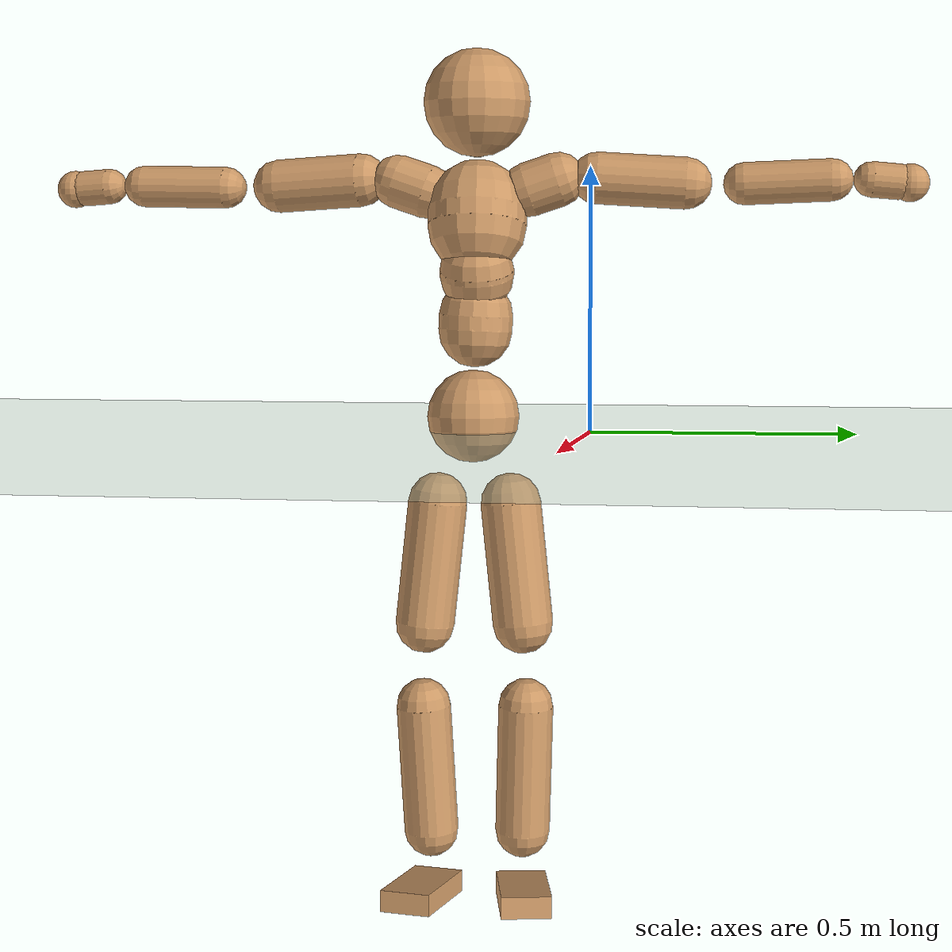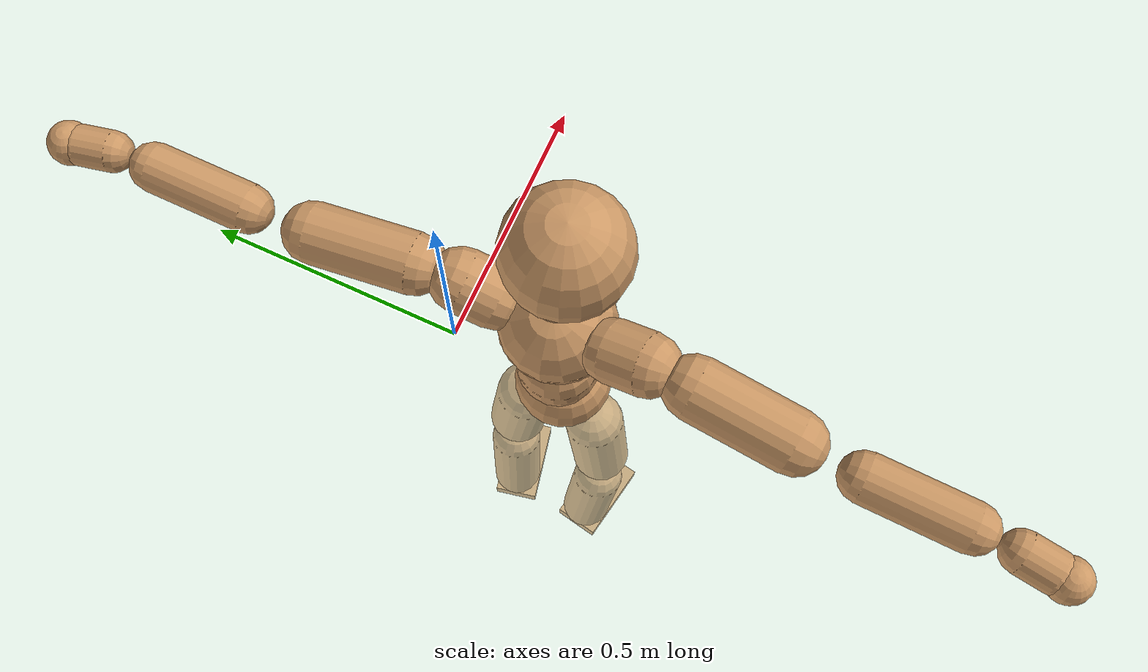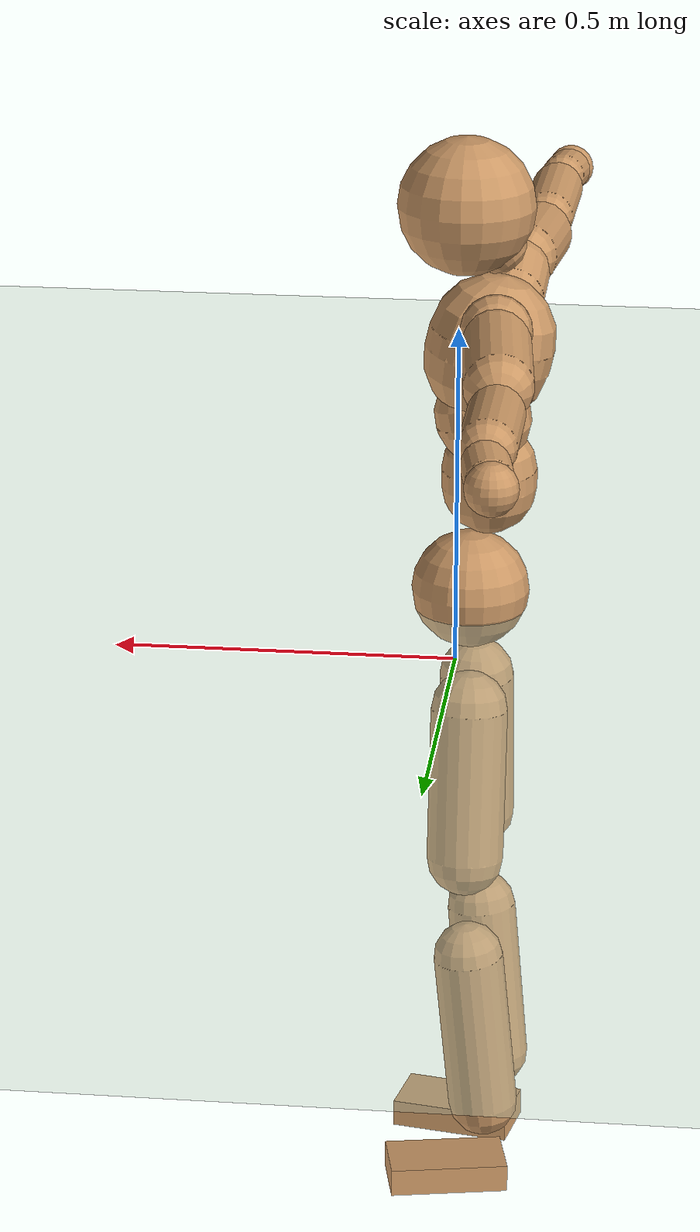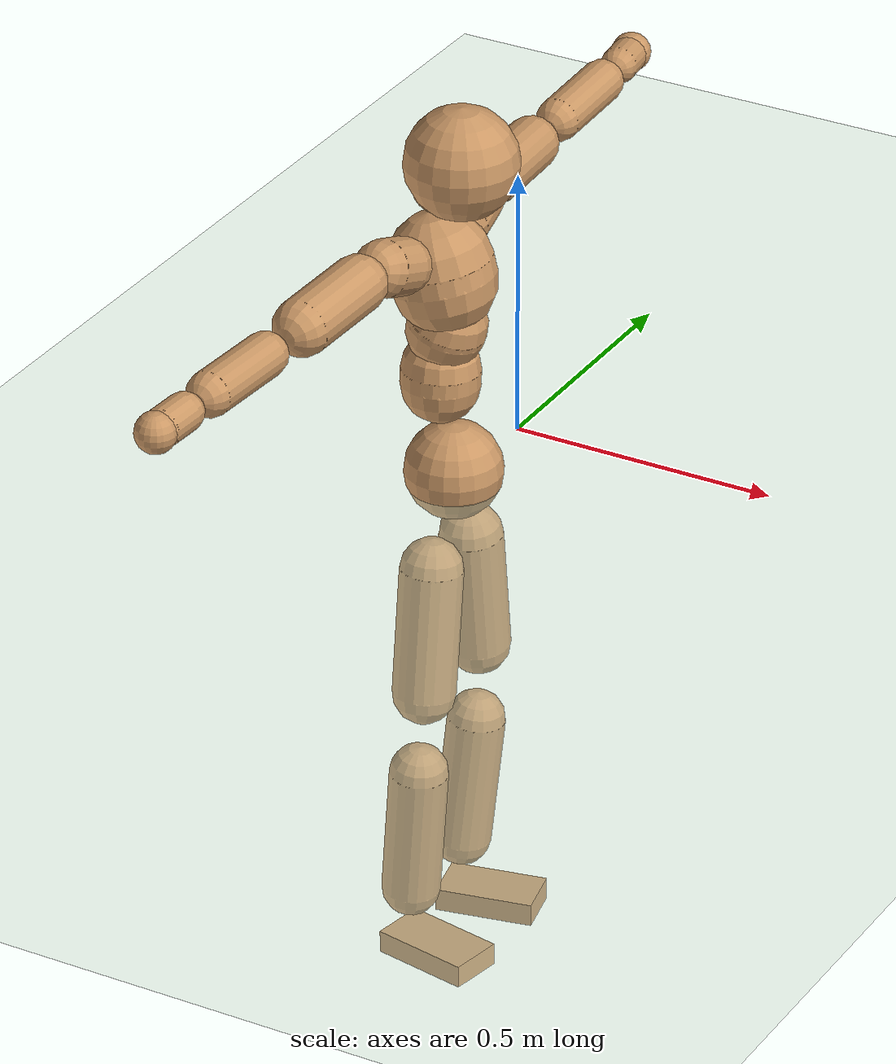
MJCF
<mujoco model="humanoid">
  <compiler coordinate="local"/>
  <default>
    <joint damping="0.0" armature="0.01" stiffness="0.0" limited="true"/>
    <geom conaffinity="1" condim="3" contype="7" margin="0.001" rgba="0.8 0.6 .4 1"/>
  </default>
  <asset>
    <texture type="skybox" builtin="gradient" rgb1=".4 .5 .6" rgb2="0 0 0" width="100" height="100"/>
    <texture builtin="flat" height="1278" mark="cross" markrgb="1 1 1" name="texgeom" random="0.01" rgb1="0.8 0.6 0.4" rgb2="0.8 0.6 0.4" type="cube" width="127"/>
    <texture builtin="checker" height="100" name="texplane" rgb1="0 0 0" rgb2="0.8 0.8 0.8" type="2d" width="100"/>
    <material name="MatPlane" reflectance="0.5" shininess="1" specular="1" texrepeat="60 60" texture="texplane"/>
    <material name="geom" texture="texgeom" texuniform="true"/>
  </asset>
  <worldbody>
    <light cutoff="100" diffuse="1 1 1" dir="-0 0 -1.3" directional="true" exponent="1" pos="0 0 1.3" specular=".1 .1 .1"/>
    <geom conaffinity="1" condim="3" name="floor" pos="0 0 0" rgba="0.8 0.9 0.8 1" size="100 100 .2" type="plane" material="MatPlane"/>
    <body name="Pelvis" pos="-0.0022 -0.2248 0.0277">
      <freejoint name="Pelvis"/>
      <geom type="sphere" contype="1" conaffinity="1" density="500" size="0.0890" pos="0.0000 0.0000 0.0000" name="Pelvis"/>
      <body name="L_Hip" pos="-0.0069 0.0639 -0.0891">
        <joint name="L_Hip_x" type="hinge" pos="0 0 0" axis="1 0 0" stiffness="800" damping="80" armature="0.02" range="-180.0000 180.0000"/>
        <joint name="L_Hip_y" type="hinge" pos="0 0 0" axis="0 1 0" stiffness="800" damping="80" armature="0.02" range="-180.0000 180.0000"/>
        <joint name="L_Hip_z" type="hinge" pos="0 0 0" axis="0 0 1" stiffness="800" damping="80" armature="0.02" range="-180.0000 180.0000"/>
        <geom type="capsule" contype="1" conaffinity="1" density="500" fromto="0.0006 0.0081 -0.0780 0.0024 0.0324 -0.3120" size="0.058" name="L_Hip"/>
        <body name="L_Knee" pos="0.003 0.0405 -0.39">
          <joint name="L_Knee_x" type="hinge" pos="0 0 0" axis="1 0 0" stiffness="800" damping="80" armature="0.02" range="-180.0000 180.0000"/>
          <joint name="L_Knee_y" type="hinge" pos="0 0 0" axis="0 1 0" stiffness="800" damping="80" armature="0.02" range="-180.0000 180.0000"/>
          <joint name="L_Knee_z" type="hinge" pos="0 0 0" axis="0 0 1" stiffness="800" damping="80" armature="0.02" range="-180.0000 180.0000"/>
          <geom type="capsule" contype="1" conaffinity="1" density="500" fromto="-0.0082 -0.0032 -0.0845 -0.0328 -0.0128 -0.3379" size="0.053" name="L_Knee"/>
          <body name="L_Ankle" pos="-0.041 -0.016 -0.4224">
            <joint name="L_Ankle_x" type="hinge" pos="0 0 0" axis="1 0 0" stiffness="800" damping="80" armature="0.02" range="-180.0000 180.0000"/>
            <joint name="L_Ankle_y" type="hinge" pos="0 0 0" axis="0 1 0" stiffness="800" damping="80" armature="0.02" range="-180.0000 180.0000"/>
            <joint name="L_Ankle_z" type="hinge" pos="0 0 0" axis="0 0 1" stiffness="800" damping="80" armature="0.02" range="-180.0000 180.0000"/>
            <geom type="box" contype="1" conaffinity="1" density="500" pos="0.0636 0.0132 -0.0294" size="0.0905 0.0486 0.0214" quat="0.9948 0.0000 0.0000 0.1022" name="L_Ankle"/>
            <body name="L_Toe" pos="0.1273 0.0264 -0.0587">
              <joint name="L_Toe_x" type="hinge" pos="0 0 0" axis="1 0 0" stiffness="500" damping="50" armature="0.02" range="-180.0000 180.0000"/>
              <joint name="L_Toe_y" type="hinge" pos="0 0 0" axis="0 1 0" stiffness="500" damping="50" armature="0.02" range="-180.0000 180.0000"/>
              <joint name="L_Toe_z" type="hinge" pos="0 0 0" axis="0 0 1" stiffness="500" damping="50" armature="0.02" range="-180.0000 180.0000"/>
              <geom type="box" contype="1" conaffinity="1" density="500" pos="0.0000 0.0000 0.0291" size="0.001 0.0024 0.0011" quat="0.9941 0.0000 0.0000 0.1081" name="L_Toe"/>
            </body>
          </body>
        </body>
      </body>
      <body name="R_Hip" pos="-0.0048 -0.062 -0.0874">
        <joint name="R_Hip_x" type="hinge" pos="0 0 0" axis="1 0 0" stiffness="800" damping="80" armature="0.02" range="-180.0000 180.0000"/>
        <joint name="R_Hip_y" type="hinge" pos="0 0 0" axis="0 1 0" stiffness="800" damping="80" armature="0.02" range="-180.0000 180.0000"/>
        <joint name="R_Hip_z" type="hinge" pos="0 0 0" axis="0 0 1" stiffness="800" damping="80" armature="0.02" range="-180.0000 180.0000"/>
        <geom type="capsule" contype="1" conaffinity="1" density="500" fromto="-0.0005 -0.0086 -0.0797 -0.0021 -0.0345 -0.3189" size="0.057" name="R_Hip"/>
        <body name="R_Knee" pos="-0.0027 -0.0431 -0.3986">
          <joint name="R_Knee_x" type="hinge" pos="0 0 0" axis="1 0 0" stiffness="800" damping="80" armature="0.02" range="-180.0000 180.0000"/>
          <joint name="R_Knee_y" type="hinge" pos="0 0 0" axis="0 1 0" stiffness="800" damping="80" armature="0.02" range="-180.0000 180.0000"/>
          <joint name="R_Knee_z" type="hinge" pos="0 0 0" axis="0 0 1" stiffness="800" damping="80" armature="0.02" range="-180.0000 180.0000"/>
          <geom type="capsule" contype="1" conaffinity="1" density="500" fromto="-0.0080 0.0036 -0.0844 -0.0318 0.0143 -0.3376" size="0.0532" name="R_Knee"/>
          <body name="R_Ankle" pos="-0.0398 0.0179 -0.422">
            <joint name="R_Ankle_x" type="hinge" pos="0 0 0" axis="1 0 0" stiffness="800" damping="80" armature="0.02" range="-180.0000 180.0000"/>
            <joint name="R_Ankle_y" type="hinge" pos="0 0 0" axis="0 1 0" stiffness="800" damping="80" armature="0.02" range="-180.0000 180.0000"/>
            <joint name="R_Ankle_z" type="hinge" pos="0 0 0" axis="0 0 1" stiffness="800" damping="80" armature="0.02" range="-180.0000 180.0000"/>
            <geom type="box" contype="1" conaffinity="1" density="500" pos="0.0658 -0.0123 -0.0248" size="0.0923 0.0498 0.0212" quat="0.9957 0.0000 0.0000 -0.0921" name="R_Ankle"/>
            <body name="R_Toe" pos="0.1316 -0.0246 -0.0496">
              <joint name="R_Toe_x" type="hinge" pos="0 0 0" axis="1 0 0" stiffness="500" damping="50" armature="0.02" range="-180.0000 180.0000"/>
              <joint name="R_Toe_y" type="hinge" pos="0 0 0" axis="0 1 0" stiffness="500" damping="50" armature="0.02" range="-180.0000 180.0000"/>
              <joint name="R_Toe_z" type="hinge" pos="0 0 0" axis="0 0 1" stiffness="500" damping="50" armature="0.02" range="-180.0000 180.0000"/>
              <geom type="box" contype="1" conaffinity="1" density="500" pos="0.0000 0.0000 0.0254" size="0.001 0.0025 0.0011" quat="0.9965 0.0000 0.0000 -0.0835" name="R_Toe"/>
            </body>
          </body>
        </body>
      </body>
      <body name="Torso" pos="-0.0264 -0.0029 0.1084">
        <joint name="Torso_x" type="hinge" pos="0 0 0" axis="1 0 0" stiffness="1000" damping="100" armature="0.02" range="-180.0000 180.0000"/>
        <joint name="Torso_y" type="hinge" pos="0 0 0" axis="0 1 0" stiffness="1000" damping="100" armature="0.02" range="-180.0000 180.0000"/>
        <joint name="Torso_z" type="hinge" pos="0 0 0" axis="0 0 1" stiffness="1000" damping="100" armature="0.02" range="-180.0000 180.0000"/>
        <geom type="capsule" contype="1" conaffinity="1" density="500" fromto="0.0007 0.0039 0.0831 0.0005 0.0026 0.0554" size="0.0714" name="Torso"/>
        <body name="Spine" pos="0.0012 0.0065 0.1385">
          <joint name="Spine_x" type="hinge" pos="0 0 0" axis="1 0 0" stiffness="1000" damping="100" armature="0.02" range="-180.0000 180.0000"/>
          <joint name="Spine_y" type="hinge" pos="0 0 0" axis="0 1 0" stiffness="1000" damping="100" armature="0.02" range="-180.0000 180.0000"/>
          <joint name="Spine_z" type="hinge" pos="0 0 0" axis="0 0 1" stiffness="1000" damping="100" armature="0.02" range="-180.0000 180.0000"/>
          <geom type="capsule" contype="1" conaffinity="1" density="500" fromto="0.0115 0.0009 0.0323 0.0077 0.0006 0.0216" size="0.0712" name="Spine"/>
          <body name="Chest" pos="0.0191 0.0014 0.0539">
            <joint name="Chest_x" type="hinge" pos="0 0 0" axis="1 0 0" stiffness="1000" damping="100" armature="0.02" range="-180.0000 180.0000"/>
            <joint name="Chest_y" type="hinge" pos="0 0 0" axis="0 1 0" stiffness="1000" damping="100" armature="0.02" range="-180.0000 180.0000"/>
            <joint name="Chest_z" type="hinge" pos="0 0 0" axis="0 0 1" stiffness="1000" damping="100" armature="0.02" range="-180.0000 180.0000"/>
            <geom type="capsule" contype="1" conaffinity="1" density="500" fromto="-0.0217 -0.0015 0.0937 -0.0145 -0.0010 0.0624" size="0.095" name="Chest"/>
            <body name="Neck" pos="-0.0364 -0.0036 0.2222">
              <joint name="Neck_x" type="hinge" pos="0 0 0" axis="1 0 0" stiffness="500" damping="50" armature="0.02" range="-180.0000 180.0000"/>
              <joint name="Neck_y" type="hinge" pos="0 0 0" axis="0 1 0" stiffness="500" damping="50" armature="0.02" range="-180.0000 180.0000"/>
              <joint name="Neck_z" type="hinge" pos="0 0 0" axis="0 0 1" stiffness="500" damping="50" armature="0.02" range="-180.0000 180.0000"/>
              <geom type="capsule" contype="1" conaffinity="1" density="500" fromto="0.0108 0.0016 0.0141 0.0433 0.0064 0.0562" size="0.0443" name="Neck"/>
              <body name="Head" pos="0.0541 0.008 0.0703">
                <joint name="Head_x" type="hinge" pos="0 0 0" axis="1 0 0" stiffness="500" damping="50" armature="0.02" range="-180.0000 180.0000"/>
                <joint name="Head_y" type="hinge" pos="0 0 0" axis="0 1 0" stiffness="500" damping="50" armature="0.02" range="-180.0000 180.0000"/>
                <joint name="Head_z" type="hinge" pos="0 0 0" axis="0 0 1" stiffness="500" damping="50" armature="0.02" range="-180.0000 180.0000"/>
                <geom type="sphere" contype="1" conaffinity="1" density="500" size="0.1019" pos="0.0000 0.0000 0.0000" name="Head"/>
              </body>
            </body>
            <body name="L_Thorax" pos="-0.0341 0.0767 0.1248">
              <joint name="L_Thorax_x" type="hinge" pos="0 0 0" axis="1 0 0" stiffness="500" damping="50" armature="0.02" range="-180.0000 180.0000"/>
              <joint name="L_Thorax_y" type="hinge" pos="0 0 0" axis="0 1 0" stiffness="500" damping="50" armature="0.02" range="-180.0000 180.0000"/>
              <joint name="L_Thorax_z" type="hinge" pos="0 0 0" axis="0 0 1" stiffness="500" damping="50" armature="0.02" range="-180.0000 180.0000"/>
              <geom type="capsule" contype="1" conaffinity="1" density="500" fromto="-0.0011 0.0187 0.0063 -0.0045 0.0748 0.0252" size="0.0523" name="L_Thorax"/>
              <body name="L_Shoulder" pos="-0.0056 0.0935 0.0315">
                <joint name="L_Shoulder_x" type="hinge" pos="0 0 0" axis="1 0 0" stiffness="500" damping="50" armature="0.02" range="-720.0000 720.0000"/>
                <joint name="L_Shoulder_y" type="hinge" pos="0 0 0" axis="0 1 0" stiffness="500" damping="50" armature="0.02" range="-720.0000 720.0000"/>
                <joint name="L_Shoulder_z" type="hinge" pos="0 0 0" axis="0 0 1" stiffness="500" damping="50" armature="0.02" range="-720.0000 720.0000"/>
                <geom type="capsule" contype="1" conaffinity="1" density="500" fromto="-0.0054 0.0559 -0.0035 -0.0217 0.2234 -0.0139" size="0.0499" name="L_Shoulder"/>
                <body name="L_Elbow" pos="-0.0271 0.2793 -0.0173">
                  <joint name="L_Elbow_x" type="hinge" pos="0 0 0" axis="1 0 0" stiffness="500" damping="50" armature="0.02" range="-720.0000 720.0000"/>
                  <joint name="L_Elbow_y" type="hinge" pos="0 0 0" axis="0 1 0" stiffness="500" damping="50" armature="0.02" range="-720.0000 720.0000"/>
                  <joint name="L_Elbow_z" type="hinge" pos="0 0 0" axis="0 0 1" stiffness="500" damping="50" armature="0.02" range="-720.0000 720.0000"/>
                  <geom type="capsule" contype="1" conaffinity="1" density="500" fromto="-0.0004 0.0547 0.0020 -0.0016 0.2186 0.0081" size="0.0402" name="L_Elbow"/>
                  <body name="L_Wrist" pos="-0.002 0.2733 0.0102">
                    <joint name="L_Wrist_x" type="hinge" pos="0 0 0" axis="1 0 0" stiffness="300" damping="30" armature="0.02" range="-180.0000 180.0000"/>
                    <joint name="L_Wrist_y" type="hinge" pos="0 0 0" axis="0 1 0" stiffness="300" damping="30" armature="0.02" range="-180.0000 180.0000"/>
                    <joint name="L_Wrist_z" type="hinge" pos="0 0 0" axis="0 0 1" stiffness="300" damping="30" armature="0.02" range="-180.0000 180.0000"/>
                    <geom type="capsule" contype="1" conaffinity="1" density="500" fromto="-0.0034 0.0182 -0.0016 -0.0135 0.0726 -0.0064" size="0.0337" name="L_Wrist"/>
                    <body name="L_Hand" pos="-0.0168 0.0908 -0.008">
                      <joint name="L_Hand_x" type="hinge" pos="0 0 0" axis="1 0 0" stiffness="300" damping="30" armature="0.02" range="-180.0000 180.0000"/>
                      <joint name="L_Hand_y" type="hinge" pos="0 0 0" axis="0 1 0" stiffness="300" damping="30" armature="0.02" range="-180.0000 180.0000"/>
                      <joint name="L_Hand_z" type="hinge" pos="0 0 0" axis="0 0 1" stiffness="300" damping="30" armature="0.02" range="-180.0000 180.0000"/>
                      <geom type="sphere" contype="1" conaffinity="1" density="500" size="0.0360" pos="0.0000 0.0000 0.0000" name="L_Hand"/>
                    </body>
                  </body>
                </body>
              </body>
            </body>
            <body name="R_Thorax" pos="-0.0382 -0.0806 0.1212">
              <joint name="R_Thorax_x" type="hinge" pos="0 0 0" axis="1 0 0" stiffness="500" damping="50" armature="0.02" range="-180.0000 180.0000"/>
              <joint name="R_Thorax_y" type="hinge" pos="0 0 0" axis="0 1 0" stiffness="500" damping="50" armature="0.02" range="-180.0000 180.0000"/>
              <joint name="R_Thorax_z" type="hinge" pos="0 0 0" axis="0 0 1" stiffness="500" damping="50" armature="0.02" range="-180.0000 180.0000"/>
              <geom type="capsule" contype="1" conaffinity="1" density="500" fromto="-0.0012 -0.0199 0.0068 -0.0049 -0.0795 0.0272" size="0.0514" name="R_Thorax"/>
              <body name="R_Shoulder" pos="-0.0062 -0.0994 0.0339">
                <joint name="R_Shoulder_x" type="hinge" pos="0 0 0" axis="1 0 0" stiffness="500" damping="50" armature="0.02" range="-720.0000 720.0000"/>
                <joint name="R_Shoulder_y" type="hinge" pos="0 0 0" axis="0 1 0" stiffness="500" damping="50" armature="0.02" range="-720.0000 720.0000"/>
                <joint name="R_Shoulder_z" type="hinge" pos="0 0 0" axis="0 0 1" stiffness="500" damping="50" armature="0.02" range="-720.0000 720.0000"/>
                <geom type="capsule" contype="1" conaffinity="1" density="500" fromto="-0.0041 -0.0550 -0.0033 -0.0165 -0.2199 -0.0132" size="0.0517" name="R_Shoulder"/>
                <body name="R_Elbow" pos="-0.0206 -0.2749 -0.0166">
                  <joint name="R_Elbow_x" type="hinge" pos="0 0 0" axis="1 0 0" stiffness="500" damping="50" armature="0.02" range="-720.0000 720.0000"/>
                  <joint name="R_Elbow_y" type="hinge" pos="0 0 0" axis="0 1 0" stiffness="500" damping="50" armature="0.02" range="-720.0000 720.0000"/>
                  <joint name="R_Elbow_z" type="hinge" pos="0 0 0" axis="0 0 1" stiffness="500" damping="50" armature="0.02" range="-720.0000 720.0000"/>
                  <geom type="capsule" contype="1" conaffinity="1" density="500" fromto="-0.0017 -0.0558 0.0013 -0.0069 -0.2230 0.0053" size="0.0406" name="R_Elbow"/>
                  <body name="R_Wrist" pos="-0.0086 -0.2788 0.0066">
                    <joint name="R_Wrist_x" type="hinge" pos="0 0 0" axis="1 0 0" stiffness="300" damping="30" armature="0.02" range="-180.0000 180.0000"/>
                    <joint name="R_Wrist_y" type="hinge" pos="0 0 0" axis="0 1 0" stiffness="300" damping="30" armature="0.02" range="-180.0000 180.0000"/>
                    <joint name="R_Wrist_z" type="hinge" pos="0 0 0" axis="0 0 1" stiffness="300" damping="30" armature="0.02" range="-180.0000 180.0000"/>
                    <geom type="capsule" contype="1" conaffinity="1" density="500" fromto="-0.0022 -0.0184 -0.0012 -0.0087 -0.0736 -0.0048" size="0.0348" name="R_Wrist"/>
                    <body name="R_Hand" pos="-0.0109 -0.092 -0.006">
                      <joint name="R_Hand_x" type="hinge" pos="0 0 0" axis="1 0 0" stiffness="300" damping="30" armature="0.02" range="-180.0000 180.0000"/>
                      <joint name="R_Hand_y" type="hinge" pos="0 0 0" axis="0 1 0" stiffness="300" damping="30" armature="0.02" range="-180.0000 180.0000"/>
                      <joint name="R_Hand_z" type="hinge" pos="0 0 0" axis="0 0 1" stiffness="300" damping="30" armature="0.02" range="-180.0000 180.0000"/>
                      <geom type="sphere" contype="1" conaffinity="1" density="500" size="0.0366" pos="0.0000 0.0000 0.0000" name="R_Hand"/>
                    </body>
                  </body>
                </body>
              </body>
            </body>
          </body>
        </body>
      </body>
    </body>
  </worldbody>
  <actuator>
    <motor name="L_Hip_x" joint="L_Hip_x" gear="500"/>
    <motor name="L_Hip_y" joint="L_Hip_y" gear="500"/>
    <motor name="L_Hip_z" joint="L_Hip_z" gear="500"/>
    <motor name="L_Knee_x" joint="L_Knee_x" gear="500"/>
    <motor name="L_Knee_y" joint="L_Knee_y" gear="500"/>
    <motor name="L_Knee_z" joint="L_Knee_z" gear="500"/>
    <motor name="L_Ankle_x" joint="L_Ankle_x" gear="500"/>
    <motor name="L_Ankle_y" joint="L_Ankle_y" gear="500"/>
    <motor name="L_Ankle_z" joint="L_Ankle_z" gear="500"/>
    <motor name="L_Toe_x" joint="L_Toe_x" gear="500"/>
    <motor name="L_Toe_y" joint="L_Toe_y" gear="500"/>
    <motor name="L_Toe_z" joint="L_Toe_z" gear="500"/>
    <motor name="R_Hip_x" joint="R_Hip_x" gear="500"/>
    <motor name="R_Hip_y" joint="R_Hip_y" gear="500"/>
    <motor name="R_Hip_z" joint="R_Hip_z" gear="500"/>
    <motor name="R_Knee_x" joint="R_Knee_x" gear="500"/>
    <motor name="R_Knee_y" joint="R_Knee_y" gear="500"/>
    <motor name="R_Knee_z" joint="R_Knee_z" gear="500"/>
    <motor name="R_Ankle_x" joint="R_Ankle_x" gear="500"/>
    <motor name="R_Ankle_y" joint="R_Ankle_y" gear="500"/>
    <motor name="R_Ankle_z" joint="R_Ankle_z" gear="500"/>
    <motor name="R_Toe_x" joint="R_Toe_x" gear="500"/>
    <motor name="R_Toe_y" joint="R_Toe_y" gear="500"/>
    <motor name="R_Toe_z" joint="R_Toe_z" gear="500"/>
    <motor name="Torso_x" joint="Torso_x" gear="500"/>
    <motor name="Torso_y" joint="Torso_y" gear="500"/>
    <motor name="Torso_z" joint="Torso_z" gear="500"/>
    <motor name="Spine_x" joint="Spine_x" gear="500"/>
    <motor name="Spine_y" joint="Spine_y" gear="500"/>
    <motor name="Spine_z" joint="Spine_z" gear="500"/>
    <motor name="Chest_x" joint="Chest_x" gear="500"/>
    <motor name="Chest_y" joint="Chest_y" gear="500"/>
    <motor name="Chest_z" joint="Chest_z" gear="500"/>
    <motor name="Neck_x" joint="Neck_x" gear="500"/>
    <motor name="Neck_y" joint="Neck_y" gear="500"/>
    <motor name="Neck_z" joint="Neck_z" gear="500"/>
    <motor name="Head_x" joint="Head_x" gear="500"/>
    <motor name="Head_y" joint="Head_y" gear="500"/>
    <motor name="Head_z" joint="Head_z" gear="500"/>
    <motor name="L_Thorax_x" joint="L_Thorax_x" gear="500"/>
    <motor name="L_Thorax_y" joint="L_Thorax_y" gear="500"/>
    <motor name="L_Thorax_z" joint="L_Thorax_z" gear="500"/>
    <motor name="L_Shoulder_x" joint="L_Shoulder_x" gear="500"/>
    <motor name="L_Shoulder_y" joint="L_Shoulder_y" gear="500"/>
    <motor name="L_Shoulder_z" joint="L_Shoulder_z" gear="500"/>
    <motor name="L_Elbow_x" joint="L_Elbow_x" gear="500"/>
    <motor name="L_Elbow_y" joint="L_Elbow_y" gear="500"/>
    <motor name="L_Elbow_z" joint="L_Elbow_z" gear="500"/>
    <motor name="L_Wrist_x" joint="L_Wrist_x" gear="500"/>
    <motor name="L_Wrist_y" joint="L_Wrist_y" gear="500"/>
    <motor name="L_Wrist_z" joint="L_Wrist_z" gear="500"/>
    <motor name="L_Hand_x" joint="L_Hand_x" gear="500"/>
    <motor name="L_Hand_y" joint="L_Hand_y" gear="500"/>
    <motor name="L_Hand_z" joint="L_Hand_z" gear="500"/>
    <motor name="R_Thorax_x" joint="R_Thorax_x" gear="500"/>
    <motor name="R_Thorax_y" joint="R_Thorax_y" gear="500"/>
    <motor name="R_Thorax_z" joint="R_Thorax_z" gear="500"/>
    <motor name="R_Shoulder_x" joint="R_Shoulder_x" gear="500"/>
    <motor name="R_Shoulder_y" joint="R_Shoulder_y" gear="500"/>
    <motor name="R_Shoulder_z" joint="R_Shoulder_z" gear="500"/>
    <motor name="R_Elbow_x" joint="R_Elbow_x" gear="500"/>
    <motor name="R_Elbow_y" joint="R_Elbow_y" gear="500"/>
    <motor name="R_Elbow_z" joint="R_Elbow_z" gear="500"/>
    <motor name="R_Wrist_x" joint="R_Wrist_x" gear="500"/>
    <motor name="R_Wrist_y" joint="R_Wrist_y" gear="500"/>
    <motor name="R_Wrist_z" joint="R_Wrist_z" gear="500"/>
    <motor name="R_Hand_x" joint="R_Hand_x" gear="500"/>
    <motor name="R_Hand_y" joint="R_Hand_y" gear="500"/>
    <motor name="R_Hand_z" joint="R_Hand_z" gear="500"/>
  </actuator>
  <contact>
    <exclude body1="Torso" body2="Chest"/>
    <exclude body1="Head" body2="Chest"/>
    <exclude body1="R_Knee" body2="R_Toe"/>
    <exclude body1="R_Knee" body2="L_Ankle"/>
    <exclude body1="R_Knee" body2="L_Toe"/>
    <exclude body1="L_Knee" body2="L_Toe"/>
    <exclude body1="L_Knee" body2="R_Ankle"/>
    <exclude body1="L_Knee" body2="R_Toe"/>
    <exclude body1="L_Shoulder" body2="Chest"/>
    <exclude body1="R_Shoulder" body2="Chest"/>
  </contact>
  <sensor/>
  <size njmax="700" nconmax="700"/>
</mujoco>
